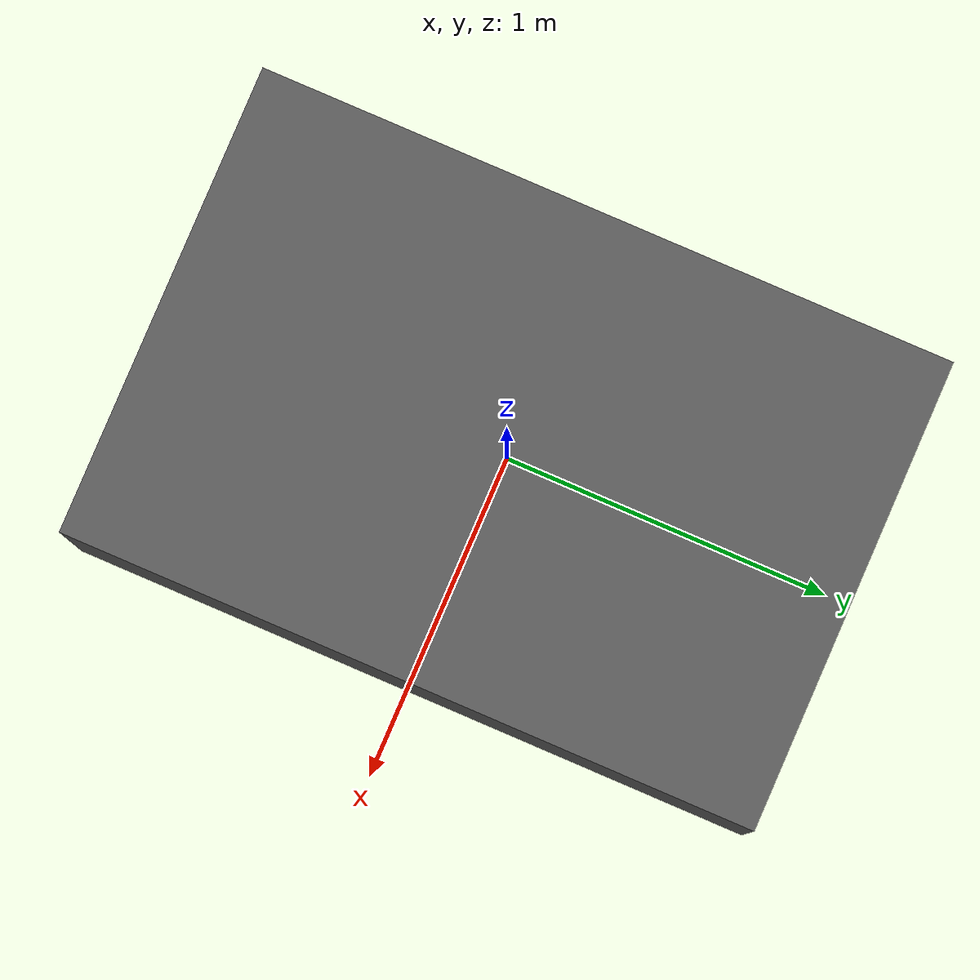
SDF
<?xml version="1.0"?>
<sdf version="1.7">
  <model name="table">
    <link name="table_body">
      <visual name="table_visual">
        <pose>0 0 0 0 0 0</pose>
        <geometry>
          <box>
            <size>1.44 2.13 0.8</size>
          </box>
        </geometry>
        <material>
          <diffuse>0.35 0.35 0.35 1.0</diffuse>
        </material>
      </visual>
      <collision name="table_collision">
        <pose>0 0 0 0 0 0</pose>
        <geometry>
          <box>
            <size>1.44 2.13 0.8</size>
          </box>
        </geometry>
      </collision>
    </link>
  </model>
</sdf>
